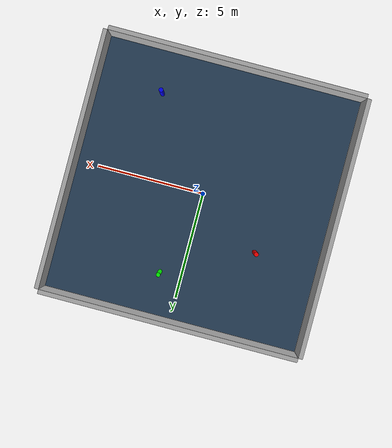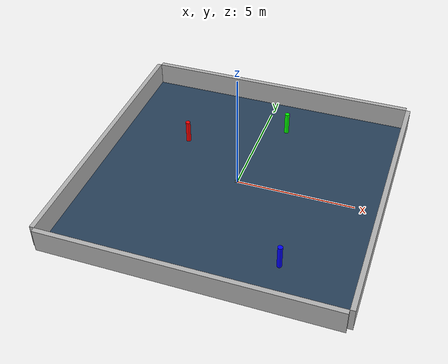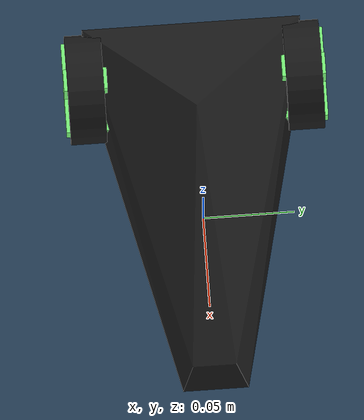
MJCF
<mujoco>
	<compiler autolimits="true"/>
	<option timestep="0.001"/>
	<asset>
		<texture name="grid" type="2d" builtin="checker" width="512" height="512" rgb1=".1 .2 .3" rgb2=".2 .3 .4"/>
		<material name="grid" texture="grid" texrepeat="1 1" texuniform="true" reflectance=".2"/>
		<mesh name="chasis" scale=".01 .006 .0015"
		  vertex=" 9   2   0
              -10  10  10
               9  -2   0
               10  3  -10
               10 -3  -10
              -8   10 -10
              -10 -10  10
              -8  -10 -10
              -5   0   20"/>
	</asset>

	<default>
		<joint damping=".03" actuatorfrcrange="-3 3"/>
		<default class="wheel">
			<geom type="cylinder" size=".03 .01" rgba="0.1 0.1 0.1 1"/>
		</default>
		<default class="decor">
			<site type="box" rgba=".5 1 .5 1"/>
		</default>
	</default>

	<worldbody>

		<!-- Camera cố định -->
		<camera name="topdown" pos="0 0 12" euler="0 0 0" fovy="60"/>
		<camera name="fixed_cam" pos="0 -10 5" euler="45 0 0" fovy="60"/>

		<!-- Sàn -->
		<geom type="plane" size="6 6 .01" material="grid"/>

		<!-- Ánh sáng -->
		<light directional="true" diffuse="1.2 1.2 1.2" specular="0.4 0.4 0.4" pos="0 0 50" dir="0 0 -1"/>
		<light directional="true" diffuse="0.7 0.7 0.7" specular="0.2 0.2 0.2" pos="25 25 25" dir="-1 -1 -1"/>

		<!-- Tường bao -->
		<geom name="wall_north" type="box" size="6 0.1 0.5" pos="0 6.1 0.5" rgba="0.7 0.7 0.7 1"/>
		<geom name="wall_south" type="box" size="6 0.1 0.5" pos="0 -6.1 0.5" rgba="0.7 0.7 0.7 1"/>
		<geom name="wall_east"  type="box" size="0.1 6 0.5" pos="6.1 0 0.5" rgba="0.7 0.7 0.7 1"/>
		<geom name="wall_west"  type="box" size="0.1 6 0.5" pos="-6.1 0 0.5" rgba="0.7 0.7 0.7 1"/>

		<!-- 3 Cột -->
		<body name="red_column" pos="-3 2 0.5">
			<geom type="cylinder" size="0.1 0.5" rgba="1 0 0 1"/>
			<light name="red_light" pos="-3 0 2" dir="0 0 -1" diffuse="1 0.6 0.6"/>
		</body>
		<body name="green_column" pos="1 4 0.5">
			<geom type="cylinder" size="0.1 0.5" rgba="0 1 0 1"/>
			<light name="green_light" pos="0 0 2" dir="0 0 -1" diffuse="0.6 1 0.6"/>
		</body>
		<body name="blue_column" pos="3 -4 0.5">
			<geom type="cylinder" size="0.1 0.5" rgba="0 0 1 1"/>
			<light name="blue_light" pos="3 0 2" dir="0 0 -1" diffuse="0.6 0.6 1"/>
		</body>

		<!-- Xe -->
		<body name="car" pos="0 0 .03">
			<freejoint/>
			<light name="top light" pos="0 0 2" mode="trackcom" diffuse=".4 .4 .4"/>
			<geom name="chasis" type="mesh" mesh="chasis" rgba="0.1 0.1 0.1 1" />
			<geom name="front wheel" pos=".08 0 -.015" type="sphere" size=".015" condim="1" priority="1"/>
			<light name="front light" pos=".1 0 .02" dir="2 0 -1" diffuse="1 1 1"/>
			<body name="left wheel" pos="-.07 .06 0" zaxis="0 1 0">
				<joint name="left"/>
				<geom class="wheel"/>
				<site class="decor" size=".006 .025 .012"/>
				<site class="decor" size=".025 .006 .012"/>
			</body>
			<body name="right wheel" pos="-.07 -.06 0" zaxis="0 1 0">
				<joint name="right"/>
				<geom class="wheel"/>
				<site class="decor" size=".006 .025 .012"/>
				<site class="decor" size=".025 .006 .012"/>
			</body>
		</body>
	</worldbody>

	<tendon>
		<fixed name="forward">
			<joint joint="left" coef=".5"/>
			<joint joint="right" coef=".5"/>
		</fixed>
		<fixed name="turn">
			<joint joint="left" coef="-.5"/>
			<joint joint="right" coef=".5"/>
		</fixed>
	</tendon>

	<actuator>
		<motor name="forward" tendon="forward" ctrlrange="-5 5"/>
		<motor name="turn" tendon="turn" ctrlrange="-2 2"/>
	</actuator>

	<sensor>
		<jointactuatorfrc name="right" joint="right"/>
		<jointactuatorfrc name="left" joint="left"/>
	</sensor>
</mujoco>
